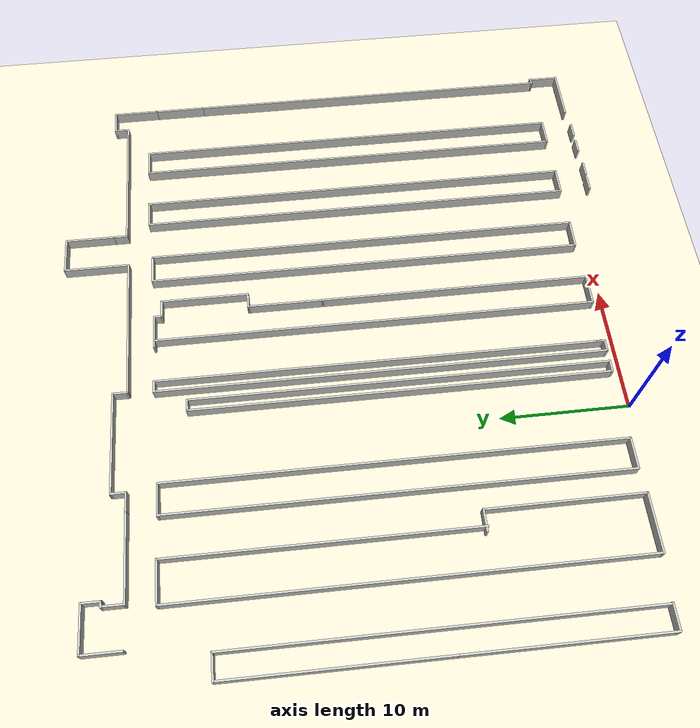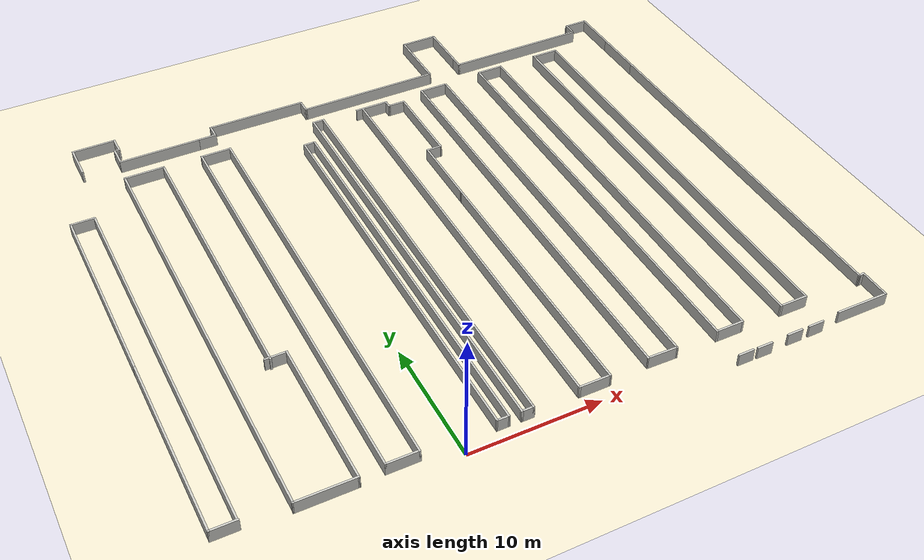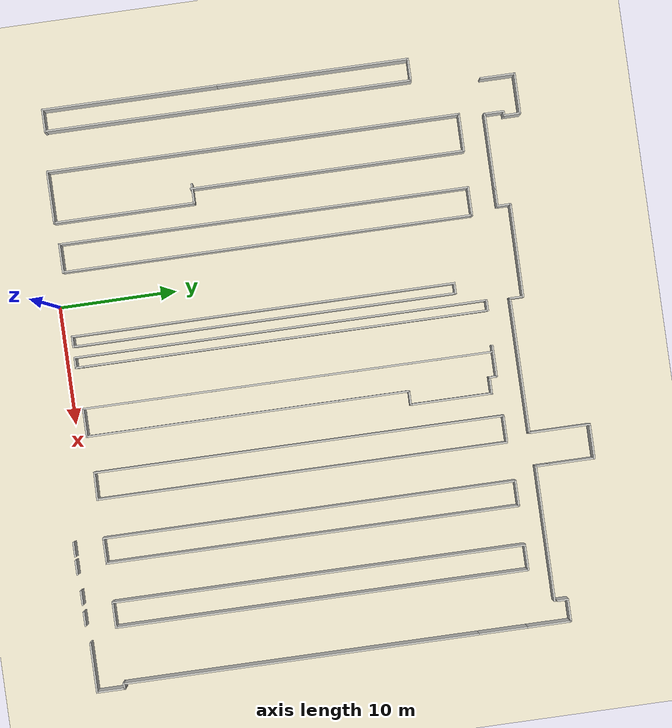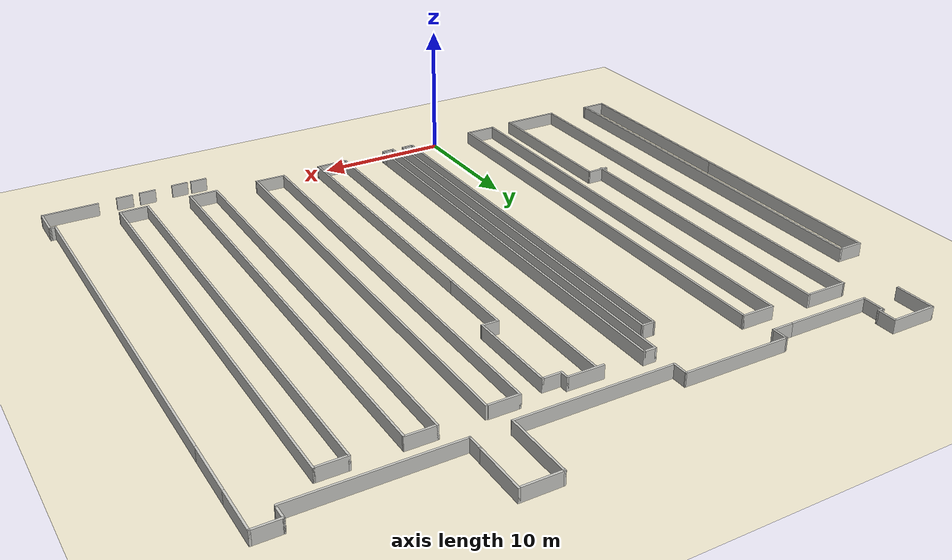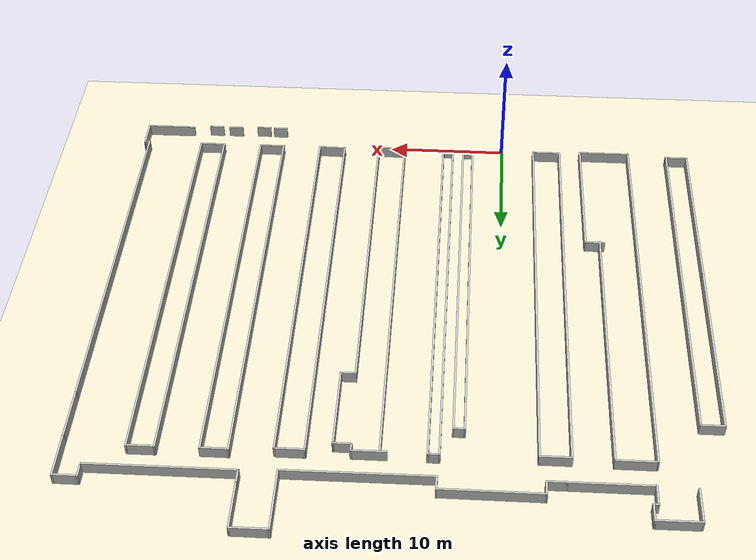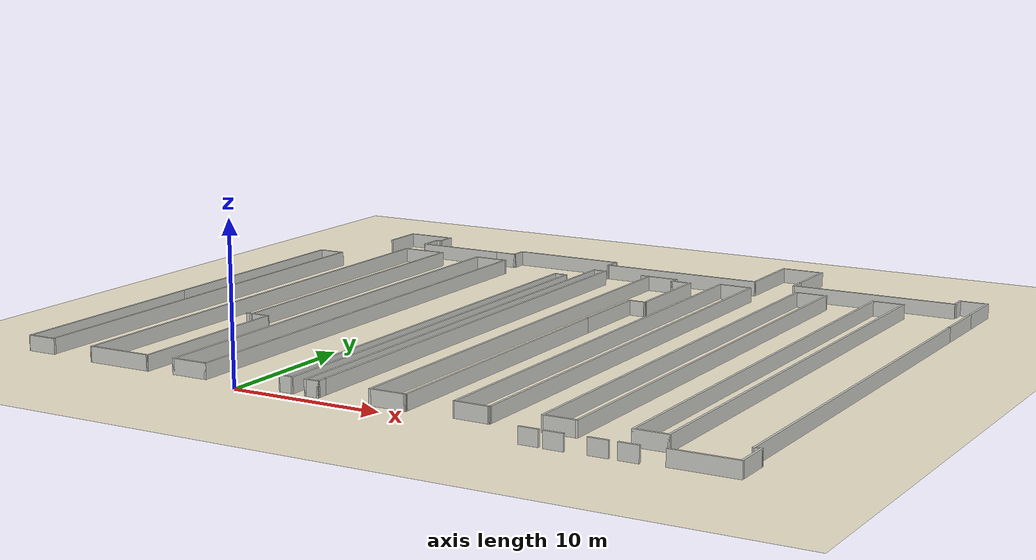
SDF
<sdf version="1.7">
 <world name="default">
  <model name="ground_plane">
   <static>1</static>
   <link name="link">
    <collision name="collision">
     <geometry><plane><normal>0 0 1</normal><size>100 100</size></plane></geometry>
     <surface><friction><ode><mu>100</mu><mu2>50</mu2></ode></friction></surface>
    </collision>
    <visual name="visual">
     <cast_shadows>0</cast_shadows>
     <geometry><plane><normal>0 0 1</normal><size>100 100</size></plane></geometry>
     <material>
      <ambient>0.85 0.82 0.72 1</ambient>
      <diffuse>0.95 0.92 0.82 1</diffuse>
      <specular>0.05 0.05 0.05 1</specular>
     </material>
    </visual>
   </link>
  </model>
  <model name="warehouse">
   <pose>0.004046 2.00696 0 0 -0 0</pose>
   <link name="Wall_182">
    <collision name="Wall_182_Collision">
     <geometry><box><size>15 0.15 1</size></box></geometry>
     <pose>0 0 0.5 0 -0 0</pose>
    </collision>
    <visual name="Wall_182_Visual">
     <pose>0 0 0.5 0 -0 0</pose>
     <geometry><box><size>15 0.15 1</size></box></geometry>
     <material>
      <script><uri>file://media/materials/scripts/gazebo.material</uri><name>Gazebo/CeilingTiled</name></script>
      <ambient>1 1 1 1</ambient>
     </material>
     <meta><layer>0</layer></meta>
    </visual>
    <pose>-16.538 6.4455 0 0 -0 1.5708</pose>
   </link>
   <link name="Wall_183">
    <collision name="Wall_183_Collision">
     <geometry><box><size>16.25 0.15 1</size></box></geometry>
     <pose>0 0 0.5 0 -0 0</pose>
    </collision>
    <visual name="Wall_183_Visual">
     <pose>0 0 0.5 0 -0 0</pose>
     <geometry><box><size>16.25 0.15 1</size></box></geometry>
     <material>
      <script><uri>file://media/materials/scripts/gazebo.material</uri><name>Gazebo/CeilingTiled</name></script>
      <ambient>1 1 1 1</ambient>
     </material>
     <meta><layer>0</layer></meta>
    </visual>
    <pose>-16.538 21.9205 0 0 -0 1.5708</pose>
   </link>
   <link name="Wall_188">
    <collision name="Wall_188_Collision">
     <geometry><box><size>35 0.15 1</size></box></geometry>
     <pose>0 0 0.5 0 -0 0</pose>
    </collision>
    <visual name="Wall_188_Visual">
     <pose>0 0 0.5 0 -0 0</pose>
     <geometry><box><size>35 0.15 1</size></box></geometry>
     <material>
      <script><uri>file://media/materials/scripts/gazebo.material</uri><name>Gazebo/CeilingTiled</name></script>
      <ambient>1 1 1 1</ambient>
     </material>
     <meta><layer>0</layer></meta>
    </visual>
    <pose>-11.3408 16.1385 0 0 -0 -1.56987</pose>
   </link>
   <link name="Wall_189">
    <collision name="Wall_189_Collision">
     <geometry><box><size>4.46 0.15 1</size></box></geometry>
     <pose>0 0 0.5 0 -0 0</pose>
    </collision>
    <visual name="Wall_189_Visual">
     <pose>0 0 0.5 0 -0 0</pose>
     <geometry><box><size>4.46 0.15 1</size></box></geometry>
     <material>
      <script><uri>file://media/materials/scripts/gazebo.material</uri><name>Gazebo/CeilingTiled</name></script>
      <ambient>1 1 1 1</ambient>
     </material>
     <meta><layer>0</layer></meta>
    </visual>
    <pose>-9.18945 -1.2865 0 0 -0 0</pose>
   </link>
   <link name="Wall_190">
    <collision name="Wall_190_Collision">
     <geometry><box><size>12 0.15 1</size></box></geometry>
     <pose>0 0 0.5 0 -0 0</pose>
    </collision>
    <visual name="Wall_190_Visual">
     <pose>0 0 0.5 0 -0 0</pose>
     <geometry><box><size>12 0.15 1</size></box></geometry>
     <material>
      <script><uri>file://media/materials/scripts/gazebo.material</uri><name>Gazebo/CeilingTiled</name></script>
      <ambient>1 1 1 1</ambient>
     </material>
     <meta><layer>0</layer></meta>
    </visual>
    <pose>-7.0308 4.6385 0 0 -0 1.57354</pose>
   </link>
   <link name="Wall_191">
    <collision name="Wall_191_Collision">
     <geometry><box><size>1.70993 0.15 1</size></box></geometry>
     <pose>0 0 0.5 0 -0 0</pose>
    </collision>
    <visual name="Wall_191_Visual">
     <pose>0 0 0.5 0 -0 0</pose>
     <geometry><box><size>1.70993 0.15 1</size></box></geometry>
     <material>
      <script><uri>file://media/materials/scripts/gazebo.material</uri><name>Gazebo/CeilingTiled</name></script>
      <ambient>1 1 1 1</ambient>
     </material>
     <meta><layer>0</layer></meta>
    </visual>
    <pose>-7.82704 10.5635 0 0 -0 3.14159</pose>
   </link>
   <link name="Wall_21">
    <collision name="Wall_21_Collision">
     <geometry><box><size>3 0.15 1</size></box></geometry>
     <pose>0 0 0.5 0 -0 0</pose>
    </collision>
    <visual name="Wall_21_Visual">
     <pose>0 0 0.5 0 -0 0</pose>
     <geometry><box><size>3 0.15 1</size></box></geometry>
     <material>
      <script><uri>file://media/materials/scripts/gazebo.material</uri><name>Gazebo/CeilingTiled</name></script>
      <ambient>1 1 1 1</ambient>
     </material>
     <meta><layer>0</layer></meta>
    </visual>
    <pose>-14.072 37.2385 0 0 -0 1.5708</pose>
   </link>
   <link name="Wall_22">
    <collision name="Wall_22_Collision">
     <geometry><box><size>3.5 0.15 1</size></box></geometry>
     <pose>0 0 0.5 0 -0 0</pose>
    </collision>
    <visual name="Wall_22_Visual">
     <pose>0 0 0.5 0 -0 0</pose>
     <geometry><box><size>3.5 0.15 1</size></box></geometry>
     <material>
      <script><uri>file://media/materials/scripts/gazebo.material</uri><name>Gazebo/CeilingTiled</name></script>
      <ambient>1 1 1 1</ambient>
     </material>
     <meta><layer>0</layer></meta>
    </visual>
    <pose>-12.397 38.6635 0 0 -0 0</pose>
   </link>
   <link name="Wall_23">
    <collision name="Wall_23_Collision">
     <geometry><box><size>1.5 0.15 1</size></box></geometry>
     <pose>0 0 0.5 0 -0 0</pose>
    </collision>
    <visual name="Wall_23_Visual">
     <pose>0 0 0.5 0 -0 0</pose>
     <geometry><box><size>1.5 0.15 1</size></box></geometry>
     <material>
      <script><uri>file://media/materials/scripts/gazebo.material</uri><name>Gazebo/CeilingTiled</name></script>
      <ambient>1 1 1 1</ambient>
     </material>
     <meta><layer>0</layer></meta>
    </visual>
    <pose>-10.722 37.9885 0 0 -0 -1.5708</pose>
   </link>
   <link name="Wall_24">
    <collision name="Wall_24_Collision">
     <geometry><box><size>0.5 0.15 1</size></box></geometry>
     <pose>0 0 0.5 0 -0 0</pose>
    </collision>
    <visual name="Wall_24_Visual">
     <pose>0 0 0.5 0 -0 0</pose>
     <geometry><box><size>0.5 0.15 1</size></box></geometry>
     <material>
      <script><uri>file://media/materials/scripts/gazebo.material</uri><name>Gazebo/CeilingTiled</name></script>
      <ambient>1 1 1 1</ambient>
     </material>
     <meta><layer>0</layer></meta>
    </visual>
    <pose>-10.897 37.3135 0 0 -0 3.14159</pose>
   </link>
   <link name="Wall_25">
    <collision name="Wall_25_Collision">
     <geometry><box><size>1.75 0.15 1</size></box></geometry>
     <pose>0 0 0.5 0 -0 0</pose>
    </collision>
    <visual name="Wall_25_Visual">
     <pose>0 0 0.5 0 -0 0</pose>
     <geometry><box><size>1.75 0.15 1</size></box></geometry>
     <material>
      <script><uri>file://media/materials/scripts/gazebo.material</uri><name>Gazebo/CeilingTiled</name></script>
      <ambient>1 1 1 1</ambient>
     </material>
     <meta><layer>0</layer></meta>
    </visual>
    <pose>-11.072 36.5135 0 0 -0 -1.5708</pose>
   </link>
   <link name="Wall_250">
    <collision name="Wall_250_Collision">
     <geometry><box><size>2.75 0.15 1</size></box></geometry>
     <pose>0 0 0.5 0 -0 0</pose>
    </collision>
    <visual name="Wall_250_Visual">
     <pose>0 0 0.5 0 -0 0</pose>
     <geometry><box><size>2.75 0.15 1</size></box></geometry>
     <material>
      <script><uri>file://media/materials/scripts/gazebo.material</uri><name>Gazebo/CeilingTiled</name></script>
      <ambient>1 1 1 1</ambient>
     </material>
     <meta><layer>0</layer></meta>
    </visual>
    <pose>9.57296 33.6605 0 0 -0 0</pose>
   </link>
   <link name="Wall_251">
    <collision name="Wall_251_Collision">
     <geometry><box><size>0.75 0.15 1</size></box></geometry>
     <pose>0 0 0.5 0 -0 0</pose>
    </collision>
    <visual name="Wall_251_Visual">
     <pose>0 0 0.5 0 -0 0</pose>
     <geometry><box><size>0.75 0.15 1</size></box></geometry>
     <material>
      <script><uri>file://media/materials/scripts/gazebo.material</uri><name>Gazebo/CeilingTiled</name></script>
      <ambient>1 1 1 1</ambient>
     </material>
     <meta><layer>0</layer></meta>
    </visual>
    <pose>10.873 33.3605 0 0 -0 -1.5708</pose>
   </link>
   <link name="Wall_252">
    <collision name="Wall_252_Collision">
     <geometry><box><size>1.5 0.15 1</size></box></geometry>
     <pose>0 0 0.5 0 -0 0</pose>
    </collision>
    <visual name="Wall_252_Visual">
     <pose>0 0 0.5 0 -0 0</pose>
     <geometry><box><size>1.5 0.15 1</size></box></geometry>
     <material>
      <script><uri>file://media/materials/scripts/gazebo.material</uri><name>Gazebo/CeilingTiled</name></script>
      <ambient>1 1 1 1</ambient>
     </material>
     <meta><layer>0</layer></meta>
    </visual>
    <pose>11.548 33.0605 0 0 -0 0</pose>
   </link>
   <link name="Wall_253">
    <collision name="Wall_253_Collision">
     <geometry><box><size>7 0.15 1</size></box></geometry>
     <pose>0 0 0.5 0 -0 0</pose>
    </collision>
    <visual name="Wall_253_Visual">
     <pose>0 0 0.5 0 -0 0</pose>
     <geometry><box><size>7 0.15 1</size></box></geometry>
     <material>
      <script><uri>file://media/materials/scripts/gazebo.material</uri><name>Gazebo/CeilingTiled</name></script>
      <ambient>1 1 1 1</ambient>
     </material>
     <meta><layer>0</layer></meta>
    </visual>
    <pose>12.223 29.6355 0 0 -0 -1.5708</pose>
   </link>
   <link name="Wall_254">
    <collision name="Wall_254_Collision">
     <geometry><box><size>1.28685 0.15 1</size></box></geometry>
     <pose>0 0 0.5 0 -0 0</pose>
    </collision>
    <visual name="Wall_254_Visual">
     <pose>0 0 0.5 0 -0 0</pose>
     <geometry><box><size>1.28685 0.15 1</size></box></geometry>
     <material>
      <script><uri>file://media/materials/scripts/gazebo.material</uri><name>Gazebo/CeilingTiled</name></script>
      <ambient>1 1 1 1</ambient>
     </material>
     <meta><layer>0</layer></meta>
    </visual>
    <pose>11.6545 26.2148 0 0 -0 3.13399</pose>
   </link>
   <link name="Wall_26">
    <collision name="Wall_26_Collision">
     <geometry><box><size>6.5 0.15 1</size></box></geometry>
     <pose>0 0 0.5 0 -0 0</pose>
    </collision>
    <visual name="Wall_26_Visual">
     <pose>0 0 0.5 0 -0 0</pose>
     <geometry><box><size>6.5 0.15 1</size></box></geometry>
     <material>
      <script><uri>file://media/materials/scripts/gazebo.material</uri><name>Gazebo/CeilingTiled</name></script>
      <ambient>1 1 1 1</ambient>
     </material>
     <meta><layer>0</layer></meta>
    </visual>
    <pose>-7.89704 35.7135 0 0 -0 0</pose>
   </link>
   <link name="Wall_263">
    <collision name="Wall_263_Collision">
     <geometry><box><size>21.5087 0.15 1</size></box></geometry>
     <pose>0 0 0.5 0 -0 0</pose>
    </collision>
    <visual name="Wall_263_Visual">
     <pose>0 0 0.5 0 -0 0</pose>
     <geometry><box><size>21.5087 0.15 1</size></box></geometry>
     <material>
      <script><uri>file://media/materials/scripts/gazebo.material</uri><name>Gazebo/CeilingTiled</name></script>
      <ambient>1 1 1 1</ambient>
     </material>
     <meta><layer>0</layer></meta>
    </visual>
    <pose>11.1045 9.63982 0 0 -0 -1.56907</pose>
   </link>
   <link name="Wall_264">
    <collision name="Wall_264_Collision">
     <geometry><box><size>2.5 0.15 1</size></box></geometry>
     <pose>0 0 0.5 0 -0 0</pose>
    </collision>
    <visual name="Wall_264_Visual">
     <pose>0 0 0.5 0 -0 0</pose>
     <geometry><box><size>2.5 0.15 1</size></box></geometry>
     <material>
      <script><uri>file://media/materials/scripts/gazebo.material</uri><name>Gazebo/CeilingTiled</name></script>
      <ambient>1 1 1 1</ambient>
     </material>
     <meta><layer>0</layer></meta>
    </visual>
    <pose>9.94796 -1.0395 0 0 -0 3.14159</pose>
   </link>
   <link name="Wall_265">
    <collision name="Wall_265_Collision">
     <geometry><box><size>34.75 0.15 1</size></box></geometry>
     <pose>0 0 0.5 0 -0 0</pose>
    </collision>
    <visual name="Wall_265_Visual">
     <pose>0 0 0.5 0 -0 0</pose>
     <geometry><box><size>34.75 0.15 1</size></box></geometry>
     <material>
      <script><uri>file://media/materials/scripts/gazebo.material</uri><name>Gazebo/CeilingTiled</name></script>
      <ambient>1 1 1 1</ambient>
     </material>
     <meta><layer>0</layer></meta>
    </visual>
    <pose>8.77296 16.2605 0 0 -0 1.5708</pose>
   </link>
   <link name="Wall_296">
    <collision name="Wall_296_Collision">
     <geometry><box><size>34.75 0.15 1</size></box></geometry>
     <pose>0 0 0.5 0 -0 0</pose>
    </collision>
    <visual name="Wall_296_Visual">
     <pose>0 0 0.5 0 -0 0</pose>
     <geometry><box><size>34.75 0.15 1</size></box></geometry>
     <material>
      <script><uri>file://media/materials/scripts/gazebo.material</uri><name>Gazebo/CeilingTiled</name></script>
      <ambient>1 1 1 1</ambient>
     </material>
     <meta><layer>0</layer></meta>
    </visual>
    <pose>14.211 16.4545 0 0 -0 1.5708</pose>
   </link>
   <link name="Wall_32">
    <collision name="Wall_32_Collision">
     <geometry><box><size>7.97124 0.15 1</size></box></geometry>
     <pose>0 0 0.5 0 -0 0</pose>
    </collision>
    <visual name="Wall_32_Visual">
     <pose>0 0 0.5 0 -0 0</pose>
     <geometry><box><size>7.97124 0.15 1</size></box></geometry>
     <material>
      <script><uri>file://media/materials/scripts/gazebo.material</uri><name>Gazebo/CeilingTiled</name></script>
      <ambient>1 1 1 1</ambient>
     </material>
     <meta><layer>0</layer></meta>
    </visual>
    <pose>0.638462 36.799 0 0 -0 -0.003708</pose>
   </link>
   <link name="Wall_329">
    <collision name="Wall_329_Collision">
     <geometry><box><size>35 0.15 1</size></box></geometry>
     <pose>0 0 0.5 0 -0 0</pose>
    </collision>
    <visual name="Wall_329_Visual">
     <pose>0 0 0.5 0 -0 0</pose>
     <geometry><box><size>35 0.15 1</size></box></geometry>
     <material>
      <script><uri>file://media/materials/scripts/gazebo.material</uri><name>Gazebo/CeilingTiled</name></script>
      <ambient>1 1 1 1</ambient>
     </material>
     <meta><layer>0</layer></meta>
    </visual>
    <pose>19.763 16.5685 0 0 -0 1.5708</pose>
   </link>
   <link name="Wall_33">
    <collision name="Wall_33_Collision">
     <geometry><box><size>1.25 0.15 1</size></box></geometry>
     <pose>0 0 0.5 0 -0 0</pose>
    </collision>
    <visual name="Wall_33_Visual">
     <pose>0 0 0.5 0 -0 0</pose>
     <geometry><box><size>1.25 0.15 1</size></box></geometry>
     <material>
      <script><uri>file://media/materials/scripts/gazebo.material</uri><name>Gazebo/CeilingTiled</name></script>
      <ambient>1 1 1 1</ambient>
     </material>
     <meta><layer>0</layer></meta>
    </visual>
    <pose>4.54896 36.2345 0 0 -0 -1.5708</pose>
   </link>
   <link name="Wall_332">
    <collision name="Wall_332_Collision">
     <geometry><box><size>35 0.15 1</size></box></geometry>
     <pose>0 0 0.5 0 -0 0</pose>
    </collision>
    <visual name="Wall_332_Visual">
     <pose>0 0 0.5 0 -0 0</pose>
     <geometry><box><size>35 0.15 1</size></box></geometry>
     <material>
      <script><uri>file://media/materials/scripts/gazebo.material</uri><name>Gazebo/CeilingTiled</name></script>
      <ambient>1 1 1 1</ambient>
     </material>
     <meta><layer>0</layer></meta>
    </visual>
    <pose>27.279 16.6055 0 0 -0 -1.5708</pose>
   </link>
   <link name="Wall_333">
    <collision name="Wall_333_Collision">
     <geometry><box><size>2.25 0.15 1</size></box></geometry>
     <pose>0 0 0.5 0 -0 0</pose>
    </collision>
    <visual name="Wall_333_Visual">
     <pose>0 0 0.5 0 -0 0</pose>
     <geometry><box><size>2.25 0.15 1</size></box></geometry>
     <material>
      <script><uri>file://media/materials/scripts/gazebo.material</uri><name>Gazebo/CeilingTiled</name></script>
      <ambient>1 1 1 1</ambient>
     </material>
     <meta><layer>0</layer></meta>
    </visual>
    <pose>26.229 -0.8195 0 0 -0 3.14159</pose>
   </link>
   <link name="Wall_334">
    <collision name="Wall_334_Collision">
     <geometry><box><size>35 0.15 1</size></box></geometry>
     <pose>0 0 0.5 0 -0 0</pose>
    </collision>
    <visual name="Wall_334_Visual">
     <pose>0 0 0.5 0 -0 0</pose>
     <geometry><box><size>35 0.15 1</size></box></geometry>
     <material>
      <script><uri>file://media/materials/scripts/gazebo.material</uri><name>Gazebo/CeilingTiled</name></script>
      <ambient>1 1 1 1</ambient>
     </material>
     <meta><layer>0</layer></meta>
    </visual>
    <pose>25.179 16.6055 0 0 -0 1.5708</pose>
   </link>
   <link name="Wall_338">
    <collision name="Wall_338_Collision">
     <geometry><box><size>2.25 0.15 1</size></box></geometry>
     <pose>0 0 0.5 0 -0 0</pose>
    </collision>
    <visual name="Wall_338_Visual">
     <pose>0 0 0.5 0 -0 0</pose>
     <geometry><box><size>2.25 0.15 1</size></box></geometry>
     <material>
      <script><uri>file://media/materials/scripts/gazebo.material</uri><name>Gazebo/CeilingTiled</name></script>
      <ambient>1 1 1 1</ambient>
     </material>
     <meta><layer>0</layer></meta>
    </visual>
    <pose>26.229 34.0305 0 0 -0 0</pose>
   </link>
   <link name="Wall_34">
    <collision name="Wall_34_Collision">
     <geometry><box><size>11.5289 0.15 1</size></box></geometry>
     <pose>0 0 0.5 0 -0 0</pose>
    </collision>
    <visual name="Wall_34_Visual">
     <pose>0 0 0.5 0 -0 0</pose>
     <geometry><box><size>11.5289 0.15 1</size></box></geometry>
     <material>
      <script><uri>file://media/materials/scripts/gazebo.material</uri><name>Gazebo/CeilingTiled</name></script>
      <ambient>1 1 1 1</ambient>
     </material>
     <meta><layer>0</layer></meta>
    </visual>
    <pose>10.2385 35.699 0 0 -0 0.002549</pose>
   </link>
   <link name="Wall_35">
    <collision name="Wall_35_Collision">
     <geometry><box><size>5.25 0.15 1</size></box></geometry>
     <pose>0 0 0.5 0 -0 0</pose>
    </collision>
    <visual name="Wall_35_Visual">
     <pose>0 0 0.5 0 -0 0</pose>
     <geometry><box><size>5.25 0.15 1</size></box></geometry>
     <material>
      <script><uri>file://media/materials/scripts/gazebo.material</uri><name>Gazebo/CeilingTiled</name></script>
      <ambient>1 1 1 1</ambient>
     </material>
     <meta><layer>0</layer></meta>
    </visual>
    <pose>15.928 38.2635 0 0 -0 1.5708</pose>
   </link>
   <link name="Wall_36">
    <collision name="Wall_36_Collision">
     <geometry><box><size>3 0.15 1</size></box></geometry>
     <pose>0 0 0.5 0 -0 0</pose>
    </collision>
    <visual name="Wall_36_Visual">
     <pose>0 0 0.5 0 -0 0</pose>
     <geometry><box><size>3 0.15 1</size></box></geometry>
     <material>
      <script><uri>file://media/materials/scripts/gazebo.material</uri><name>Gazebo/CeilingTiled</name></script>
      <ambient>1 1 1 1</ambient>
     </material>
     <meta><layer>0</layer></meta>
    </visual>
    <pose>17.353 40.8135 0 0 -0 0</pose>
   </link>
   <link name="Wall_37">
    <collision name="Wall_37_Collision">
     <geometry><box><size>4 0.15 1</size></box></geometry>
     <pose>0 0 0.5 0 -0 0</pose>
    </collision>
    <visual name="Wall_37_Visual">
     <pose>0 0 0.5 0 -0 0</pose>
     <geometry><box><size>4 0.15 1</size></box></geometry>
     <material>
      <script><uri>file://media/materials/scripts/gazebo.material</uri><name>Gazebo/CeilingTiled</name></script>
      <ambient>1 1 1 1</ambient>
     </material>
     <meta><layer>0</layer></meta>
    </visual>
    <pose>18.778 38.8885 0 0 -0 -1.5708</pose>
   </link>
   <link name="Wall_45">
    <collision name="Wall_45_Collision">
     <geometry><box><size>1 0.15 1</size></box></geometry>
     <pose>0 0 0.5 0 -0 0</pose>
    </collision>
    <visual name="Wall_45_Visual">
     <pose>0 0 0.5 0 -0 0</pose>
     <geometry><box><size>1 0.15 1</size></box></geometry>
     <material>
      <script><uri>file://media/materials/scripts/gazebo.material</uri><name>Gazebo/CeilingTiled</name></script>
      <ambient>1 1 1 1</ambient>
     </material>
     <meta><layer>0</layer></meta>
    </visual>
    <pose>30.178 36.5385 0 0 -0 1.5708</pose>
   </link>
   <link name="Wall_46">
    <collision name="Wall_46_Collision">
     <geometry><box><size>2 0.15 1</size></box></geometry>
     <pose>0 0 0.5 0 -0 0</pose>
    </collision>
    <visual name="Wall_46_Visual">
     <pose>0 0 0.5 0 -0 0</pose>
     <geometry><box><size>2 0.15 1</size></box></geometry>
     <material>
      <script><uri>file://media/materials/scripts/gazebo.material</uri><name>Gazebo/CeilingTiled</name></script>
      <ambient>1 1 1 1</ambient>
     </material>
     <meta><layer>0</layer></meta>
    </visual>
    <pose>31.103 36.9635 0 0 -0 0</pose>
   </link>
   <link name="Wall_47">
    <collision name="Wall_47_Collision">
     <geometry><box><size>3.75 0.15 1</size></box></geometry>
     <pose>0 0 0.5 0 -0 0</pose>
    </collision>
    <visual name="Wall_47_Visual">
     <pose>0 0 0.5 0 -0 0</pose>
     <geometry><box><size>3.75 0.15 1</size></box></geometry>
     <material>
      <script><uri>file://media/materials/scripts/gazebo.material</uri><name>Gazebo/CeilingTiled</name></script>
      <ambient>1 1 1 1</ambient>
     </material>
     <meta><layer>0</layer></meta>
    </visual>
    <pose>32.028 35.1635 0 0 -0 -1.5708</pose>
   </link>
   <link name="Wall_48">
    <collision name="Wall_48_Collision">
     <geometry><box><size>4.25 0.15 1</size></box></geometry>
     <pose>0 0 0.5 0 -0 0</pose>
    </collision>
    <visual name="Wall_48_Visual">
     <pose>0 0 0.5 0 -0 0</pose>
     <geometry><box><size>4.25 0.15 1</size></box></geometry>
     <material>
      <script><uri>file://media/materials/scripts/gazebo.material</uri><name>Gazebo/CeilingTiled</name></script>
      <ambient>1 1 1 1</ambient>
     </material>
     <meta><layer>0</layer></meta>
    </visual>
    <pose>32.028 31.3135 0 0 -0 -1.5708</pose>
   </link>
   <link name="Wall_66">
    <collision name="Wall_66_Collision">
     <geometry><box><size>2.5 0.15 1</size></box></geometry>
     <pose>0 0 0.5 0 -0 0</pose>
    </collision>
    <visual name="Wall_66_Visual">
     <pose>0 0 0.5 0 -0 0</pose>
     <geometry><box><size>2.5 0.15 1</size></box></geometry>
     <material>
      <script><uri>file://media/materials/scripts/gazebo.material</uri><name>Gazebo/CeilingTiled</name></script>
      <ambient>1 1 1 1</ambient>
     </material>
     <meta><layer>0</layer></meta>
    </visual>
    <pose>32.428 -1.9615 0 0 -0 -1.5708</pose>
   </link>
   <link name="Wall_669">
    <collision name="Wall_669_Collision">
     <geometry><box><size>6.05 0.15 1</size></box></geometry>
     <pose>0 0 0.5 0 -0 0</pose>
    </collision>
    <visual name="Wall_669_Visual">
     <pose>0 0 0.5 0 -0 0</pose>
     <geometry><box><size>6.05 0.15 1</size></box></geometry>
     <material>
      <script><uri>file://media/materials/scripts/gazebo.material</uri><name>Gazebo/CeilingTiled</name></script>
      <ambient>1 1 1 1</ambient>
     </material>
     <meta><layer>0</layer></meta>
    </visual>
    <pose>11.0861 23.2605 0 0 -0 1.5708</pose>
   </link>
   <link name="Wall_67">
    <collision name="Wall_67_Collision">
     <geometry><box><size>4.25 0.15 1</size></box></geometry>
     <pose>0 0 0.5 0 -0 0</pose>
    </collision>
    <visual name="Wall_67_Visual">
     <pose>0 0 0.5 0 -0 0</pose>
     <geometry><box><size>4.25 0.15 1</size></box></geometry>
     <material>
      <script><uri>file://media/materials/scripts/gazebo.material</uri><name>Gazebo/CeilingTiled</name></script>
      <ambient>1 1 1 1</ambient>
     </material>
     <meta><layer>0</layer></meta>
    </visual>
    <pose>30.378 -3.1365 0 0 -0 3.14159</pose>
   </link>
   <link name="Wall_671">
    <collision name="Wall_671_Collision">
     <geometry><box><size>34.75 0.15 1</size></box></geometry>
     <pose>0 0 0.5 0 -0 0</pose>
    </collision>
    <visual name="Wall_671_Visual">
     <pose>0 0 0.5 0 -0 0</pose>
     <geometry><box><size>34.75 0.15 1</size></box></geometry>
     <material>
      <script><uri>file://media/materials/scripts/gazebo.material</uri><name>Gazebo/CeilingTiled</name></script>
      <ambient>1 1 1 1</ambient>
     </material>
     <meta><layer>0</layer></meta>
    </visual>
    <pose>16.461 16.4045 0 0 -0 -1.5708</pose>
   </link>
   <link name="Wall_672">
    <collision name="Wall_672_Collision">
     <geometry><box><size>2.40056 0.15 1</size></box></geometry>
     <pose>0 0 0.5 0 -0 0</pose>
    </collision>
    <visual name="Wall_672_Visual">
     <pose>0 0 0.5 0 -0 0</pose>
     <geometry><box><size>2.40056 0.15 1</size></box></geometry>
     <material>
      <script><uri>file://media/materials/scripts/gazebo.material</uri><name>Gazebo/CeilingTiled</name></script>
      <ambient>1 1 1 1</ambient>
     </material>
     <meta><layer>0</layer></meta>
    </visual>
    <pose>15.336 -0.8705 0 0 -0 3.11937</pose>
   </link>
   <link name="Wall_674">
    <collision name="Wall_674_Collision">
     <geometry><box><size>2.25 0.15 1</size></box></geometry>
     <pose>0 0 0.5 0 -0 0</pose>
    </collision>
    <visual name="Wall_674_Visual">
     <pose>0 0 0.5 0 -0 0</pose>
     <geometry><box><size>2.25 0.15 1</size></box></geometry>
     <material>
      <script><uri>file://media/materials/scripts/gazebo.material</uri><name>Gazebo/CeilingTiled</name></script>
      <ambient>1 1 1 1</ambient>
     </material>
     <meta><layer>0</layer></meta>
    </visual>
    <pose>15.261 33.7545 0 0 -0 0</pose>
   </link>
   <link name="Wall_676">
    <collision name="Wall_676_Collision">
     <geometry><box><size>2.2435 0.15 1</size></box></geometry>
     <pose>0 0 0.5 0 -0 0</pose>
    </collision>
    <visual name="Wall_676_Visual">
     <pose>0 0 0.5 0 -0 0</pose>
     <geometry><box><size>2.2435 0.15 1</size></box></geometry>
     <material>
      <script><uri>file://media/materials/scripts/gazebo.material</uri><name>Gazebo/CeilingTiled</name></script>
      <ambient>1 1 1 1</ambient>
     </material>
     <meta><layer>0</layer></meta>
    </visual>
    <pose>20.8097 33.9935 0 0 -0 0</pose>
   </link>
   <link name="Wall_677">
    <collision name="Wall_677_Collision">
     <geometry><box><size>34.9935 0.15 1</size></box></geometry>
     <pose>0 0 0.5 0 -0 0</pose>
    </collision>
    <visual name="Wall_677_Visual">
     <pose>0 0 0.5 0 -0 0</pose>
     <geometry><box><size>34.9935 0.15 1</size></box></geometry>
     <material>
      <script><uri>file://media/materials/scripts/gazebo.material</uri><name>Gazebo/CeilingTiled</name></script>
      <ambient>1 1 1 1</ambient>
     </material>
     <meta><layer>0</layer></meta>
    </visual>
    <pose>21.8567 16.5652 0 0 -0 -1.57078</pose>
   </link>
   <link name="Wall_678">
    <collision name="Wall_678_Collision">
     <geometry><box><size>2.2435 0.15 1</size></box></geometry>
     <pose>0 0 0.5 0 -0 0</pose>
    </collision>
    <visual name="Wall_678_Visual">
     <pose>0 0 0.5 0 -0 0</pose>
     <geometry><box><size>2.2435 0.15 1</size></box></geometry>
     <material>
      <script><uri>file://media/materials/scripts/gazebo.material</uri><name>Gazebo/CeilingTiled</name></script>
      <ambient>1 1 1 1</ambient>
     </material>
     <meta><layer>0</layer></meta>
    </visual>
    <pose>20.81 -0.8565 0 0 -0 3.14159</pose>
   </link>
   <link name="Wall_680">
    <collision name="Wall_680_Collision">
     <geometry><box><size>1.96 0.15 1</size></box></geometry>
     <pose>0 0 0.5 0 -0 0</pose>
    </collision>
    <visual name="Wall_680_Visual">
     <pose>0 0 0.5 0 -0 0</pose>
     <geometry><box><size>1.96 0.15 1</size></box></geometry>
     <material>
      <script><uri>file://media/materials/scripts/gazebo.material</uri><name>Gazebo/CeilingTiled</name></script>
      <ambient>1 1 1 1</ambient>
     </material>
     <meta><layer>0</layer></meta>
    </visual>
    <pose>-15.633 29.9705 0 0 -0 0</pose>
   </link>
   <link name="Wall_681">
    <collision name="Wall_681_Collision">
     <geometry><box><size>31 0.15 1</size></box></geometry>
     <pose>0 0 0.5 0 -0 0</pose>
    </collision>
    <visual name="Wall_681_Visual">
     <pose>0 0 0.5 0 -0 0</pose>
     <geometry><box><size>31 0.15 1</size></box></geometry>
     <material>
      <script><uri>file://media/materials/scripts/gazebo.material</uri><name>Gazebo/CeilingTiled</name></script>
      <ambient>1 1 1 1</ambient>
     </material>
     <meta><layer>0</layer></meta>
    </visual>
    <pose>-14.728 14.5455 0 0 -0 -1.5708</pose>
   </link>
   <link name="Wall_683">
    <collision name="Wall_683_Collision">
     <geometry><box><size>2 0.15 1</size></box></geometry>
     <pose>0 0 0.5 0 -0 0</pose>
    </collision>
    <visual name="Wall_683_Visual">
     <pose>0 0 0.5 0 -0 0</pose>
     <geometry><box><size>2 0.15 1</size></box></geometry>
     <material>
      <script><uri>file://media/materials/scripts/gazebo.material</uri><name>Gazebo/CeilingTiled</name></script>
      <ambient>1 1 1 1</ambient>
     </material>
     <meta><layer>0</layer></meta>
    </visual>
    <pose>-15.613 -0.9795 0 0 -0 0</pose>
   </link>
   <link name="Wall_686">
    <collision name="Wall_686_Collision">
     <geometry><box><size>35 0.15 1</size></box></geometry>
     <pose>0 0 0.5 0 -0 0</pose>
    </collision>
    <visual name="Wall_686_Visual">
     <pose>0 0 0.5 0 -0 0</pose>
     <geometry><box><size>35 0.15 1</size></box></geometry>
     <material>
      <script><uri>file://media/materials/scripts/gazebo.material</uri><name>Gazebo/CeilingTiled</name></script>
      <ambient>1 1 1 1</ambient>
     </material>
     <meta><layer>0</layer></meta>
    </visual>
    <pose>4.42696 16.2715 0 0 -0 1.5708</pose>
   </link>
   <link name="Wall_687">
    <collision name="Wall_687_Collision">
     <geometry><box><size>1 0.15 1</size></box></geometry>
     <pose>0 0 0.5 0 -0 0</pose>
    </collision>
    <visual name="Wall_687_Visual">
     <pose>0 0 0.5 0 -0 0</pose>
     <geometry><box><size>1 0.15 1</size></box></geometry>
     <material>
      <script><uri>file://media/materials/scripts/gazebo.material</uri><name>Gazebo/CeilingTiled</name></script>
      <ambient>1 1 1 1</ambient>
     </material>
     <meta><layer>0</layer></meta>
    </visual>
    <pose>4.85196 33.6965 0 0 -0 0</pose>
   </link>
   <link name="Wall_688">
    <collision name="Wall_688_Collision">
     <geometry><box><size>34.75 0.15 1</size></box></geometry>
     <pose>0 0 0.5 0 -0 0</pose>
    </collision>
    <visual name="Wall_688_Visual">
     <pose>0 0 0.5 0 -0 0</pose>
     <geometry><box><size>34.75 0.15 1</size></box></geometry>
     <material>
      <script><uri>file://media/materials/scripts/gazebo.material</uri><name>Gazebo/CeilingTiled</name></script>
      <ambient>1 1 1 1</ambient>
     </material>
     <meta><layer>0</layer></meta>
    </visual>
    <pose>5.27696 16.3965 0 0 -0 -1.5708</pose>
   </link>
   <link name="Wall_693">
    <collision name="Wall_693_Collision">
     <geometry><box><size>1 0.15 1</size></box></geometry>
     <pose>0 0 0.5 0 -0 0</pose>
    </collision>
    <visual name="Wall_693_Visual">
     <pose>0 0 0.5 0 -0 0</pose>
     <geometry><box><size>1 0.15 1</size></box></geometry>
     <material>
      <script><uri>file://media/materials/scripts/gazebo.material</uri><name>Gazebo/CeilingTiled</name></script>
      <ambient>1 1 1 1</ambient>
     </material>
     <meta><layer>0</layer></meta>
    </visual>
    <pose>4.85196 -1.1535 0 0 -0 0</pose>
   </link>
   <link name="Wall_694">
    <collision name="Wall_694_Collision">
     <geometry><box><size>0.75 0.15 1</size></box></geometry>
     <pose>0 0 0.5 0 -0 0</pose>
    </collision>
    <visual name="Wall_694_Visual">
     <pose>0 0 0.5 0 -0 0</pose>
     <geometry><box><size>0.75 0.15 1</size></box></geometry>
     <material>
      <script><uri>file://media/materials/scripts/gazebo.material</uri><name>Gazebo/CeilingTiled</name></script>
      <ambient>1 1 1 1</ambient>
     </material>
     <meta><layer>0</layer></meta>
    </visual>
    <pose>5.27696 -0.8535 0 0 -0 1.5708</pose>
   </link>
   <link name="Wall_696">
    <collision name="Wall_696_Collision">
     <geometry><box><size>32.5 0.15 1</size></box></geometry>
     <pose>0 0 0.5 0 -0 0</pose>
    </collision>
    <visual name="Wall_696_Visual">
     <pose>0 0 0.5 0 -0 0</pose>
     <geometry><box><size>32.5 0.15 1</size></box></geometry>
     <material>
      <script><uri>file://media/materials/scripts/gazebo.material</uri><name>Gazebo/CeilingTiled</name></script>
      <ambient>1 1 1 1</ambient>
     </material>
     <meta><layer>0</layer></meta>
    </visual>
    <pose>3.49046 15.0515 0 0 -0 1.5712</pose>
   </link>
   <link name="Wall_699">
    <collision name="Wall_699_Collision">
     <geometry><box><size>1 0.15 1</size></box></geometry>
     <pose>0 0 0.5 0 -0 0</pose>
    </collision>
    <visual name="Wall_699_Visual">
     <pose>0 0 0.5 0 -0 0</pose>
     <geometry><box><size>1 0.15 1</size></box></geometry>
     <material>
      <script><uri>file://media/materials/scripts/gazebo.material</uri><name>Gazebo/CeilingTiled</name></script>
      <ambient>1 1 1 1</ambient>
     </material>
     <meta><layer>0</layer></meta>
    </visual>
    <pose>3.05896 31.2265 0 0 -0 3.14159</pose>
   </link>
   <link name="Wall_700">
    <collision name="Wall_700_Collision">
     <geometry><box><size>32.5 0.15 1</size></box></geometry>
     <pose>0 0 0.5 0 -0 0</pose>
    </collision>
    <visual name="Wall_700_Visual">
     <pose>0 0 0.5 0 -0 0</pose>
     <geometry><box><size>32.5 0.15 1</size></box></geometry>
     <material>
      <script><uri>file://media/materials/scripts/gazebo.material</uri><name>Gazebo/CeilingTiled</name></script>
      <ambient>1 1 1 1</ambient>
     </material>
     <meta><layer>0</layer></meta>
    </visual>
    <pose>2.64046 15.0515 0 0 -0 -1.57039</pose>
   </link>
   <link name="Wall_701">
    <collision name="Wall_701_Collision">
     <geometry><box><size>1 0.15 1</size></box></geometry>
     <pose>0 0 0.5 0 -0 0</pose>
    </collision>
    <visual name="Wall_701_Visual">
     <pose>0 0 0.5 0 -0 0</pose>
     <geometry><box><size>1 0.15 1</size></box></geometry>
     <material>
      <script><uri>file://media/materials/scripts/gazebo.material</uri><name>Gazebo/CeilingTiled</name></script>
      <ambient>1 1 1 1</ambient>
     </material>
     <meta><layer>0</layer></meta>
    </visual>
    <pose>3.07196 -1.1235 0 0 -0 0</pose>
   </link>
   <link name="Wall_835">
    <collision name="Wall_835_Collision">
     <geometry><box><size>1.25 0.15 1</size></box></geometry>
     <pose>0 0 0.5 0 -0 0</pose>
    </collision>
    <visual name="Wall_835_Visual">
     <pose>0 0 0.5 0 -0 0</pose>
     <geometry><box><size>1.25 0.15 1</size></box></geometry>
     <material>
      <script><uri>file://media/materials/scripts/gazebo.material</uri><name>Gazebo/CeilingTiled</name></script>
      <ambient>1 1 1 1</ambient>
     </material>
     <meta><layer>0</layer></meta>
    </visual>
    <pose>20.341 -3.3875 0 0 -0 0</pose>
   </link>
   <link name="Wall_840">
    <collision name="Wall_840_Collision">
     <geometry><box><size>1.25 0.15 1</size></box></geometry>
     <pose>0 0 0.5 0 -0 0</pose>
    </collision>
    <visual name="Wall_840_Visual">
     <pose>0 0 0.5 0 -0 0</pose>
     <geometry><box><size>1.25 0.15 1</size></box></geometry>
     <material>
      <script><uri>file://media/materials/scripts/gazebo.material</uri><name>Gazebo/CeilingTiled</name></script>
      <ambient>1 1 1 1</ambient>
     </material>
     <meta><layer>0</layer></meta>
    </visual>
    <pose>21.859 -3.4155 0 0 -0 0</pose>
   </link>
   <link name="Wall_849">
    <collision name="Wall_849_Collision">
     <geometry><box><size>1.25 0.15 1</size></box></geometry>
     <pose>0 0 0.5 0 -0 0</pose>
    </collision>
    <visual name="Wall_849_Visual">
     <pose>0 0 0.5 0 -0 0</pose>
     <geometry><box><size>1.25 0.15 1</size></box></geometry>
     <material>
      <script><uri>file://media/materials/scripts/gazebo.material</uri><name>Gazebo/CeilingTiled</name></script>
      <ambient>1 1 1 1</ambient>
     </material>
     <meta><layer>0</layer></meta>
    </visual>
    <pose>24.438 -3.3295 0 0 -0 0</pose>
   </link>
   <link name="Wall_854">
    <collision name="Wall_854_Collision">
     <geometry><box><size>1.25 0.15 1</size></box></geometry>
     <pose>0 0 0.5 0 -0 0</pose>
    </collision>
    <visual name="Wall_854_Visual">
     <pose>0 0 0.5 0 -0 0</pose>
     <geometry><box><size>1.25 0.15 1</size></box></geometry>
     <material>
      <script><uri>file://media/materials/scripts/gazebo.material</uri><name>Gazebo/CeilingTiled</name></script>
      <ambient>1 1 1 1</ambient>
     </material>
     <meta><layer>0</layer></meta>
    </visual>
    <pose>26.215 -3.3295 0 0 -0 0</pose>
   </link>
   <link name="Wall_931">
    <collision name="Wall_931_Collision">
     <geometry><box><size>30.25 0.15 1</size></box></geometry>
     <pose>0 0 0.5 0 -0 0</pose>
    </collision>
    <visual name="Wall_931_Visual">
     <pose>0 0 0.5 0 -0 0</pose>
     <geometry><box><size>30.25 0.15 1</size></box></geometry>
     <material>
      <script><uri>file://media/materials/scripts/gazebo.material</uri><name>Gazebo/CeilingTiled</name></script>
      <ambient>1 1 1 1</ambient>
     </material>
     <meta><layer>0</layer></meta>
    </visual>
    <pose>32.028 14.2135 0 0 -0 -1.5708</pose>
   </link>
   <link name="Wall_932">
    <collision name="Wall_932_Collision">
     <geometry><box><size>0.553113 0.15 1</size></box></geometry>
     <pose>0 0 0.5 0 -0 0</pose>
    </collision>
    <visual name="Wall_932_Visual">
     <pose>0 0 0.5 0 -0 0</pose>
     <geometry><box><size>0.553113 0.15 1</size></box></geometry>
     <material>
      <script><uri>file://media/materials/scripts/gazebo.material</uri><name>Gazebo/CeilingTiled</name></script>
      <ambient>1 1 1 1</ambient>
     </material>
     <meta><layer>0</layer></meta>
    </visual>
    <pose>32.228 -0.8115 0 0 -0 0.124355</pose>
   </link>
   <link name="Wall_937">
    <collision name="Wall_937_Collision">
     <geometry><box><size>1.25 0.15 1</size></box></geometry>
     <pose>0 0 0.5 0 -0 0</pose>
    </collision>
    <visual name="Wall_937_Visual">
     <pose>0 0 0.5 0 -0 0</pose>
     <geometry><box><size>1.25 0.15 1</size></box></geometry>
     <material>
      <script><uri>file://media/materials/scripts/gazebo.material</uri><name>Gazebo/CeilingTiled</name></script>
      <ambient>1 1 1 1</ambient>
     </material>
     <meta><layer>0</layer></meta>
    </visual>
    <pose>18.778 36.4135 0 0 -0 -1.5708</pose>
   </link>
   <link name="Wall_938">
    <collision name="Wall_938_Collision">
     <geometry><box><size>11.5 0.15 1</size></box></geometry>
     <pose>0 0 0.5 0 -0 0</pose>
    </collision>
    <visual name="Wall_938_Visual">
     <pose>0 0 0.5 0 -0 0</pose>
     <geometry><box><size>11.5 0.15 1</size></box></geometry>
     <material>
      <script><uri>file://media/materials/scripts/gazebo.material</uri><name>Gazebo/CeilingTiled</name></script>
      <ambient>1 1 1 1</ambient>
     </material>
     <meta><layer>0</layer></meta>
    </visual>
    <pose>24.453 35.8635 0 0 -0 0</pose>
   </link>
   <link name="Wall_940">
    <collision name="Wall_940_Collision">
     <geometry><box><size>1.25 0.15 1</size></box></geometry>
     <pose>0 0 0.5 0 -0 0</pose>
    </collision>
    <visual name="Wall_940_Visual">
     <pose>0 0 0.5 0 -0 0</pose>
     <geometry><box><size>1.25 0.15 1</size></box></geometry>
     <material>
      <script><uri>file://media/materials/scripts/gazebo.material</uri><name>Gazebo/CeilingTiled</name></script>
      <ambient>1 1 1 1</ambient>
     </material>
     <meta><layer>0</layer></meta>
    </visual>
    <pose>-3.27204 36.2635 0 0 -0 -1.5708</pose>
   </link>
   <link name="Wall_941">
    <collision name="Wall_941_Collision">
     <geometry><box><size>1.6 0.15 1</size></box></geometry>
     <pose>0 0 0.5 0 -0 0</pose>
    </collision>
    <visual name="Wall_941_Visual">
     <pose>0 0 0.5 0 -0 0</pose>
     <geometry><box><size>1.6 0.15 1</size></box></geometry>
     <material>
      <script><uri>file://media/materials/scripts/gazebo.material</uri><name>Gazebo/CeilingTiled</name></script>
      <ambient>1 1 1 1</ambient>
     </material>
     <meta><layer>0</layer></meta>
    </visual>
    <pose>-3.99704 35.7135 0 0 -0 3.14159</pose>
   </link>
   <link name="Wall_958">
    <collision name="Wall_958_Collision">
     <geometry><box><size>3.25 0.15 1</size></box></geometry>
     <pose>0 0 0.5 0 -0 0</pose>
    </collision>
    <visual name="Wall_958_Visual">
     <pose>0 0 0.5 0 -0 0</pose>
     <geometry><box><size>3.25 0.15 1</size></box></geometry>
     <material>
      <script><uri>file://media/materials/scripts/gazebo.material</uri><name>Gazebo/CeilingTiled</name></script>
      <ambient>1 1 1 1</ambient>
     </material>
     <meta><layer>0</layer></meta>
    </visual>
    <pose>-9.80704 33.5635 0 0 -0 0</pose>
   </link>
   <link name="Wall_959">
    <collision name="Wall_959_Collision">
     <geometry><box><size>23.25 0.15 1</size></box></geometry>
     <pose>0 0 0.5 0 -0 0</pose>
    </collision>
    <visual name="Wall_959_Visual">
     <pose>0 0 0.5 0 -0 0</pose>
     <geometry><box><size>23.25 0.15 1</size></box></geometry>
     <material>
      <script><uri>file://media/materials/scripts/gazebo.material</uri><name>Gazebo/CeilingTiled</name></script>
      <ambient>1 1 1 1</ambient>
     </material>
     <meta><layer>0</layer></meta>
    </visual>
    <pose>-8.25704 22.0135 0 0 -0 -1.5708</pose>
   </link>
   <link name="Wall_964">
    <collision name="Wall_964_Collision">
     <geometry><box><size>34.75 0.15 1</size></box></geometry>
     <pose>0 0 0.5 0 -0 0</pose>
    </collision>
    <visual name="Wall_964_Visual">
     <pose>0 0 0.5 0 -0 0</pose>
     <geometry><box><size>34.75 0.15 1</size></box></geometry>
     <material>
      <script><uri>file://media/materials/scripts/gazebo.material</uri><name>Gazebo/CeilingTiled</name></script>
      <ambient>1 1 1 1</ambient>
     </material>
     <meta><layer>0</layer></meta>
    </visual>
    <pose>-2.81404 16.1835 0 0 -0 1.5708</pose>
   </link>
   <link name="Wall_965">
    <collision name="Wall_965_Collision">
     <geometry><box><size>2.5 0.15 1</size></box></geometry>
     <pose>0 0 0.5 0 -0 0</pose>
    </collision>
    <visual name="Wall_965_Visual">
     <pose>0 0 0.5 0 -0 0</pose>
     <geometry><box><size>2.5 0.15 1</size></box></geometry>
     <material>
      <script><uri>file://media/materials/scripts/gazebo.material</uri><name>Gazebo/CeilingTiled</name></script>
      <ambient>1 1 1 1</ambient>
     </material>
     <meta><layer>0</layer></meta>
    </visual>
    <pose>-3.98904 33.4835 0 0 -0 3.14159</pose>
   </link>
   <link name="Wall_966">
    <collision name="Wall_966_Collision">
     <geometry><box><size>34.75 0.15 1</size></box></geometry>
     <pose>0 0 0.5 0 -0 0</pose>
    </collision>
    <visual name="Wall_966_Visual">
     <pose>0 0 0.5 0 -0 0</pose>
     <geometry><box><size>34.75 0.15 1</size></box></geometry>
     <material>
      <script><uri>file://media/materials/scripts/gazebo.material</uri><name>Gazebo/CeilingTiled</name></script>
      <ambient>1 1 1 1</ambient>
     </material>
     <meta><layer>0</layer></meta>
    </visual>
    <pose>-5.16404 16.1835 0 0 -0 -1.5708</pose>
   </link>
   <link name="Wall_968">
    <collision name="Wall_968_Collision">
     <geometry><box><size>2.5 0.15 1</size></box></geometry>
     <pose>0 0 0.5 0 -0 0</pose>
    </collision>
    <visual name="Wall_968_Visual">
     <pose>0 0 0.5 0 -0 0</pose>
     <geometry><box><size>2.5 0.15 1</size></box></geometry>
     <material>
      <script><uri>file://media/materials/scripts/gazebo.material</uri><name>Gazebo/CeilingTiled</name></script>
      <ambient>1 1 1 1</ambient>
     </material>
     <meta><layer>0</layer></meta>
    </visual>
    <pose>-3.98904 -1.1165 0 0 -0 0</pose>
   </link>
   <static>1</static>
  </model>
 </world>
</sdf>
